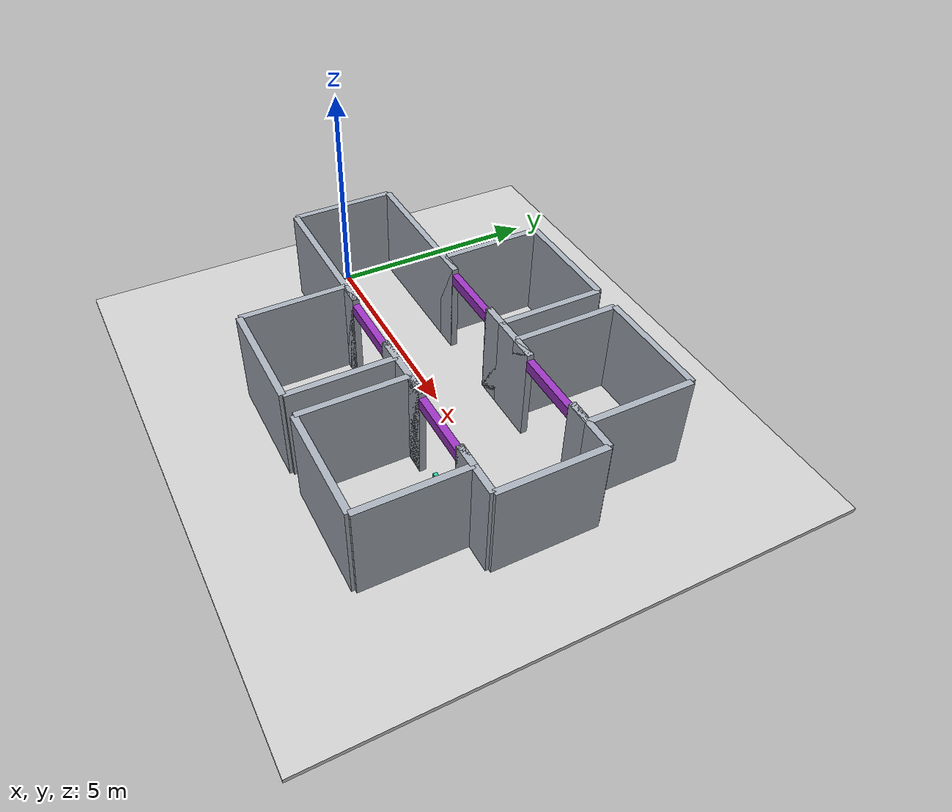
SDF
<sdf version="1.9">
  <world name="default">
    <plugin filename="gz-sim-physics-system" name="gz::sim::systems::Physics" />
    <plugin filename="gz-sim-user-commands-system" name="gz::sim::systems::UserCommands" />
    <plugin filename="gz-sim-sensors-system" name="gz::sim::systems::Sensors">
      <render_engine>ogre2</render_engine>
    </plugin>
    <plugin filename="gz-sim-imu-system" name="gz::sim::systems::Imu" />
    <plugin filename="gz-sim-contact-system" name="gz::sim::systems::Contact" />
    <physics name="3ms" type="ode">
      <max_step_size>0.003</max_step_size>
      <real_time_factor>1</real_time_factor>
    </physics>
    <light name="sun" type="directional">
      <pose>0 0 10 0 0 0</pose>
      <diffuse>0.9 0.9 0.9 1</diffuse>
      <direction>-0.5 0.1 -0.9</direction>
    </light>
    <model name="ground_plane">
      <static>true</static>
      <pose>4.75 0 -0.05 0 0 0</pose>
      <link name="body">
        <collision name="collision">
          <geometry>
            <box>
              <size>13.5 12 0.1</size>
            </box>
          </geometry>
        </collision>
        <visual name="visual">
          <geometry>
            <box>
              <size>13.5 12 0.1</size>
            </box>
          </geometry>
          <material>
            <ambient>0.8 0.8 0.8 1</ambient>
            <diffuse>0.8 0.8 0.8 1</diffuse>
          </material>
        </visual>
      </link>
    </model>
    <model name="start_wall">
      <static>true</static>
      <pose>0 0 1.1 0 0 0</pose>
      <link name="body">
        <collision name="collision">
          <geometry>
            <box>
              <size>0.15 2.4 2.2</size>
            </box>
          </geometry>
        </collision>
        <visual name="visual">
          <geometry>
            <box>
              <size>0.15 2.4 2.2</size>
            </box>
          </geometry>
          <material>
            <ambient>0.65 0.68 0.72 1</ambient>
            <diffuse>0.65 0.68 0.72 1</diffuse>
          </material>
        </visual>
      </link>
    </model>
    <model name="end_wall">
      <static>true</static>
      <pose>9.5 0 1.1 0 0 0</pose>
      <link name="body">
        <collision name="collision">
          <geometry>
            <box>
              <size>0.15 2.4 2.2</size>
            </box>
          </geometry>
        </collision>
        <visual name="visual">
          <geometry>
            <box>
              <size>0.15 2.4 2.2</size>
            </box>
          </geometry>
          <material>
            <ambient>0.65 0.68 0.72 1</ambient>
            <diffuse>0.65 0.68 0.72 1</diffuse>
          </material>
        </visual>
      </link>
    </model>
    <model name="hall_-1_1">
      <static>true</static>
      <pose>1.775 -1.2 1.1 0 0 0</pose>
      <link name="body">
        <collision name="collision">
          <geometry>
            <box>
              <size>3.55 0.15 2.2</size>
            </box>
          </geometry>
        </collision>
        <visual name="visual">
          <geometry>
            <box>
              <size>3.55 0.15 2.2</size>
            </box>
          </geometry>
          <material>
            <ambient>0.65 0.68 0.72 1</ambient>
            <diffuse>0.65 0.68 0.72 1</diffuse>
          </material>
        </visual>
      </link>
    </model>
    <model name="room_-1_1_-1">
      <static>true</static>
      <pose>3.0 -2.4 1.1 0 0 0</pose>
      <link name="body">
        <collision name="collision">
          <geometry>
            <box>
              <size>0.15 2.4 2.2</size>
            </box>
          </geometry>
        </collision>
        <visual name="visual">
          <geometry>
            <box>
              <size>0.15 2.4 2.2</size>
            </box>
          </geometry>
          <material>
            <ambient>0.65 0.68 0.72 1</ambient>
            <diffuse>0.65 0.68 0.72 1</diffuse>
          </material>
        </visual>
      </link>
    </model>
    <model name="room_-1_1_1">
      <static>true</static>
      <pose>5.6 -2.4 1.1 0 0 0</pose>
      <link name="body">
        <collision name="collision">
          <geometry>
            <box>
              <size>0.15 2.4 2.2</size>
            </box>
          </geometry>
        </collision>
        <visual name="visual">
          <geometry>
            <box>
              <size>0.15 2.4 2.2</size>
            </box>
          </geometry>
          <material>
            <ambient>0.65 0.68 0.72 1</ambient>
            <diffuse>0.65 0.68 0.72 1</diffuse>
          </material>
        </visual>
      </link>
    </model>
    <model name="room_end_-1_1">
      <static>true</static>
      <pose>4.3 -3.5999999999999996 1.1 0 0 0</pose>
      <link name="body">
        <collision name="collision">
          <geometry>
            <box>
              <size>2.6 0.15 2.2</size>
            </box>
          </geometry>
        </collision>
        <visual name="visual">
          <geometry>
            <box>
              <size>2.6 0.15 2.2</size>
            </box>
          </geometry>
          <material>
            <ambient>0.65 0.68 0.72 1</ambient>
            <diffuse>0.65 0.68 0.72 1</diffuse>
          </material>
        </visual>
      </link>
    </model>
    <model name="jamb_-1_1_-1">
      <static>true</static>
      <pose>3.275 -1.2 1.1 0 0 0</pose>
      <link name="body">
        <collision name="collision">
          <geometry>
            <box>
              <size>0.55 0.15 2.2</size>
            </box>
          </geometry>
        </collision>
        <visual name="visual">
          <geometry>
            <box>
              <size>0.55 0.15 2.2</size>
            </box>
          </geometry>
          <material>
            <ambient>0.65 0.68 0.72 1</ambient>
            <diffuse>0.65 0.68 0.72 1</diffuse>
          </material>
        </visual>
      </link>
    </model>
    <model name="jamb_-1_1_1">
      <static>true</static>
      <pose>5.324999999999999 -1.2 1.1 0 0 0</pose>
      <link name="body">
        <collision name="collision">
          <geometry>
            <box>
              <size>0.55 0.15 2.2</size>
            </box>
          </geometry>
        </collision>
        <visual name="visual">
          <geometry>
            <box>
              <size>0.55 0.15 2.2</size>
            </box>
          </geometry>
          <material>
            <ambient>0.65 0.68 0.72 1</ambient>
            <diffuse>0.65 0.68 0.72 1</diffuse>
          </material>
        </visual>
      </link>
    </model>
    <model name="hall_-1_2">
      <static>true</static>
      <pose>5.9 -1.2 1.1 0 0 0</pose>
      <link name="body">
        <collision name="collision">
          <geometry>
            <box>
              <size>1.7000000000000002 0.15 2.2</size>
            </box>
          </geometry>
        </collision>
        <visual name="visual">
          <geometry>
            <box>
              <size>1.7000000000000002 0.15 2.2</size>
            </box>
          </geometry>
          <material>
            <ambient>0.65 0.68 0.72 1</ambient>
            <diffuse>0.65 0.68 0.72 1</diffuse>
          </material>
        </visual>
      </link>
    </model>
    <model name="room_-1_2_-1">
      <static>true</static>
      <pose>6.2 -2.4 1.1 0 0 0</pose>
      <link name="body">
        <collision name="collision">
          <geometry>
            <box>
              <size>0.15 2.4 2.2</size>
            </box>
          </geometry>
        </collision>
        <visual name="visual">
          <geometry>
            <box>
              <size>0.15 2.4 2.2</size>
            </box>
          </geometry>
          <material>
            <ambient>0.65 0.68 0.72 1</ambient>
            <diffuse>0.65 0.68 0.72 1</diffuse>
          </material>
        </visual>
      </link>
    </model>
    <model name="room_-1_2_1">
      <static>true</static>
      <pose>8.8 -2.4 1.1 0 0 0</pose>
      <link name="body">
        <collision name="collision">
          <geometry>
            <box>
              <size>0.15 2.4 2.2</size>
            </box>
          </geometry>
        </collision>
        <visual name="visual">
          <geometry>
            <box>
              <size>0.15 2.4 2.2</size>
            </box>
          </geometry>
          <material>
            <ambient>0.65 0.68 0.72 1</ambient>
            <diffuse>0.65 0.68 0.72 1</diffuse>
          </material>
        </visual>
      </link>
    </model>
    <model name="room_end_-1_2">
      <static>true</static>
      <pose>7.5 -3.5999999999999996 1.1 0 0 0</pose>
      <link name="body">
        <collision name="collision">
          <geometry>
            <box>
              <size>2.6 0.15 2.2</size>
            </box>
          </geometry>
        </collision>
        <visual name="visual">
          <geometry>
            <box>
              <size>2.6 0.15 2.2</size>
            </box>
          </geometry>
          <material>
            <ambient>0.65 0.68 0.72 1</ambient>
            <diffuse>0.65 0.68 0.72 1</diffuse>
          </material>
        </visual>
      </link>
    </model>
    <model name="jamb_-1_2_-1">
      <static>true</static>
      <pose>6.475 -1.2 1.1 0 0 0</pose>
      <link name="body">
        <collision name="collision">
          <geometry>
            <box>
              <size>0.55 0.15 2.2</size>
            </box>
          </geometry>
        </collision>
        <visual name="visual">
          <geometry>
            <box>
              <size>0.55 0.15 2.2</size>
            </box>
          </geometry>
          <material>
            <ambient>0.65 0.68 0.72 1</ambient>
            <diffuse>0.65 0.68 0.72 1</diffuse>
          </material>
        </visual>
      </link>
    </model>
    <model name="jamb_-1_2_1">
      <static>true</static>
      <pose>8.525 -1.2 1.1 0 0 0</pose>
      <link name="body">
        <collision name="collision">
          <geometry>
            <box>
              <size>0.55 0.15 2.2</size>
            </box>
          </geometry>
        </collision>
        <visual name="visual">
          <geometry>
            <box>
              <size>0.55 0.15 2.2</size>
            </box>
          </geometry>
          <material>
            <ambient>0.65 0.68 0.72 1</ambient>
            <diffuse>0.65 0.68 0.72 1</diffuse>
          </material>
        </visual>
      </link>
    </model>
    <model name="hall_end_-1">
      <static>true</static>
      <pose>8.875 -1.2 1.1 0 0 0</pose>
      <link name="body">
        <collision name="collision">
          <geometry>
            <box>
              <size>1.25 0.15 2.2</size>
            </box>
          </geometry>
        </collision>
        <visual name="visual">
          <geometry>
            <box>
              <size>1.25 0.15 2.2</size>
            </box>
          </geometry>
          <material>
            <ambient>0.65 0.68 0.72 1</ambient>
            <diffuse>0.65 0.68 0.72 1</diffuse>
          </material>
        </visual>
      </link>
    </model>
    <model name="hall_1_1">
      <static>true</static>
      <pose>1.775 1.2 1.1 0 0 0</pose>
      <link name="body">
        <collision name="collision">
          <geometry>
            <box>
              <size>3.55 0.15 2.2</size>
            </box>
          </geometry>
        </collision>
        <visual name="visual">
          <geometry>
            <box>
              <size>3.55 0.15 2.2</size>
            </box>
          </geometry>
          <material>
            <ambient>0.65 0.68 0.72 1</ambient>
            <diffuse>0.65 0.68 0.72 1</diffuse>
          </material>
        </visual>
      </link>
    </model>
    <model name="room_1_1_-1">
      <static>true</static>
      <pose>3.0 2.4 1.1 0 0 0</pose>
      <link name="body">
        <collision name="collision">
          <geometry>
            <box>
              <size>0.15 2.4 2.2</size>
            </box>
          </geometry>
        </collision>
        <visual name="visual">
          <geometry>
            <box>
              <size>0.15 2.4 2.2</size>
            </box>
          </geometry>
          <material>
            <ambient>0.65 0.68 0.72 1</ambient>
            <diffuse>0.65 0.68 0.72 1</diffuse>
          </material>
        </visual>
      </link>
    </model>
    <model name="room_1_1_1">
      <static>true</static>
      <pose>5.6 2.4 1.1 0 0 0</pose>
      <link name="body">
        <collision name="collision">
          <geometry>
            <box>
              <size>0.15 2.4 2.2</size>
            </box>
          </geometry>
        </collision>
        <visual name="visual">
          <geometry>
            <box>
              <size>0.15 2.4 2.2</size>
            </box>
          </geometry>
          <material>
            <ambient>0.65 0.68 0.72 1</ambient>
            <diffuse>0.65 0.68 0.72 1</diffuse>
          </material>
        </visual>
      </link>
    </model>
    <model name="room_end_1_1">
      <static>true</static>
      <pose>4.3 3.5999999999999996 1.1 0 0 0</pose>
      <link name="body">
        <collision name="collision">
          <geometry>
            <box>
              <size>2.6 0.15 2.2</size>
            </box>
          </geometry>
        </collision>
        <visual name="visual">
          <geometry>
            <box>
              <size>2.6 0.15 2.2</size>
            </box>
          </geometry>
          <material>
            <ambient>0.65 0.68 0.72 1</ambient>
            <diffuse>0.65 0.68 0.72 1</diffuse>
          </material>
        </visual>
      </link>
    </model>
    <model name="jamb_1_1_-1">
      <static>true</static>
      <pose>3.275 1.2 1.1 0 0 0</pose>
      <link name="body">
        <collision name="collision">
          <geometry>
            <box>
              <size>0.55 0.15 2.2</size>
            </box>
          </geometry>
        </collision>
        <visual name="visual">
          <geometry>
            <box>
              <size>0.55 0.15 2.2</size>
            </box>
          </geometry>
          <material>
            <ambient>0.65 0.68 0.72 1</ambient>
            <diffuse>0.65 0.68 0.72 1</diffuse>
          </material>
        </visual>
      </link>
    </model>
    <model name="jamb_1_1_1">
      <static>true</static>
      <pose>5.324999999999999 1.2 1.1 0 0 0</pose>
      <link name="body">
        <collision name="collision">
          <geometry>
            <box>
              <size>0.55 0.15 2.2</size>
            </box>
          </geometry>
        </collision>
        <visual name="visual">
          <geometry>
            <box>
              <size>0.55 0.15 2.2</size>
            </box>
          </geometry>
          <material>
            <ambient>0.65 0.68 0.72 1</ambient>
            <diffuse>0.65 0.68 0.72 1</diffuse>
          </material>
        </visual>
      </link>
    </model>
    <model name="hall_1_2">
      <static>true</static>
      <pose>5.9 1.2 1.1 0 0 0</pose>
      <link name="body">
        <collision name="collision">
          <geometry>
            <box>
              <size>1.7000000000000002 0.15 2.2</size>
            </box>
          </geometry>
        </collision>
        <visual name="visual">
          <geometry>
            <box>
              <size>1.7000000000000002 0.15 2.2</size>
            </box>
          </geometry>
          <material>
            <ambient>0.65 0.68 0.72 1</ambient>
            <diffuse>0.65 0.68 0.72 1</diffuse>
          </material>
        </visual>
      </link>
    </model>
    <model name="room_1_2_-1">
      <static>true</static>
      <pose>6.2 2.4 1.1 0 0 0</pose>
      <link name="body">
        <collision name="collision">
          <geometry>
            <box>
              <size>0.15 2.4 2.2</size>
            </box>
          </geometry>
        </collision>
        <visual name="visual">
          <geometry>
            <box>
              <size>0.15 2.4 2.2</size>
            </box>
          </geometry>
          <material>
            <ambient>0.65 0.68 0.72 1</ambient>
            <diffuse>0.65 0.68 0.72 1</diffuse>
          </material>
        </visual>
      </link>
    </model>
    <model name="room_1_2_1">
      <static>true</static>
      <pose>8.8 2.4 1.1 0 0 0</pose>
      <link name="body">
        <collision name="collision">
          <geometry>
            <box>
              <size>0.15 2.4 2.2</size>
            </box>
          </geometry>
        </collision>
        <visual name="visual">
          <geometry>
            <box>
              <size>0.15 2.4 2.2</size>
            </box>
          </geometry>
          <material>
            <ambient>0.65 0.68 0.72 1</ambient>
            <diffuse>0.65 0.68 0.72 1</diffuse>
          </material>
        </visual>
      </link>
    </model>
    <model name="room_end_1_2">
      <static>true</static>
      <pose>7.5 3.5999999999999996 1.1 0 0 0</pose>
      <link name="body">
        <collision name="collision">
          <geometry>
            <box>
              <size>2.6 0.15 2.2</size>
            </box>
          </geometry>
        </collision>
        <visual name="visual">
          <geometry>
            <box>
              <size>2.6 0.15 2.2</size>
            </box>
          </geometry>
          <material>
            <ambient>0.65 0.68 0.72 1</ambient>
            <diffuse>0.65 0.68 0.72 1</diffuse>
          </material>
        </visual>
      </link>
    </model>
    <model name="jamb_1_2_-1">
      <static>true</static>
      <pose>6.475 1.2 1.1 0 0 0</pose>
      <link name="body">
        <collision name="collision">
          <geometry>
            <box>
              <size>0.55 0.15 2.2</size>
            </box>
          </geometry>
        </collision>
        <visual name="visual">
          <geometry>
            <box>
              <size>0.55 0.15 2.2</size>
            </box>
          </geometry>
          <material>
            <ambient>0.65 0.68 0.72 1</ambient>
            <diffuse>0.65 0.68 0.72 1</diffuse>
          </material>
        </visual>
      </link>
    </model>
    <model name="jamb_1_2_1">
      <static>true</static>
      <pose>8.525 1.2 1.1 0 0 0</pose>
      <link name="body">
        <collision name="collision">
          <geometry>
            <box>
              <size>0.55 0.15 2.2</size>
            </box>
          </geometry>
        </collision>
        <visual name="visual">
          <geometry>
            <box>
              <size>0.55 0.15 2.2</size>
            </box>
          </geometry>
          <material>
            <ambient>0.65 0.68 0.72 1</ambient>
            <diffuse>0.65 0.68 0.72 1</diffuse>
          </material>
        </visual>
      </link>
    </model>
    <model name="hall_end_1">
      <static>true</static>
      <pose>8.875 1.2 1.1 0 0 0</pose>
      <link name="body">
        <collision name="collision">
          <geometry>
            <box>
              <size>1.25 0.15 2.2</size>
            </box>
          </geometry>
        </collision>
        <visual name="visual">
          <geometry>
            <box>
              <size>1.25 0.15 2.2</size>
            </box>
          </geometry>
          <material>
            <ambient>0.65 0.68 0.72 1</ambient>
            <diffuse>0.65 0.68 0.72 1</diffuse>
          </material>
        </visual>
      </link>
    </model>
    <model name="r3geo_base_r010_right_1_lintel">
      <static>true</static>
      <pose>4.3 -1.2 1.95 0 0 0</pose>
      <link name="body">
        <collision name="collision">
          <geometry>
            <box>
              <size>1.5 0.16 0.25</size>
            </box>
          </geometry>
        </collision>
        <visual name="visual">
          <geometry>
            <box>
              <size>1.5 0.16 0.25</size>
            </box>
          </geometry>
          <material>
            <ambient>0.6 0.2 0.75 1</ambient>
            <diffuse>0.6 0.2 0.75 1</diffuse>
          </material>
        </visual>
      </link>
    </model>
    <model name="r3geo_base_r010_right_1_entrance_sign">
      <static>true</static>
      <pose>4.83 -1.5 1.05 0 0 0</pose>
      <link name="body">
        <visual name="visual">
          <geometry>
            <box>
              <size>0.32 0.08 0.32</size>
            </box>
          </geometry>
          <material>
            <ambient>0.16 0.8 0.61 1</ambient>
            <diffuse>0.16 0.8 0.61 1</diffuse>
          </material>
        </visual>
      </link>
    </model>
    <model name="r3geo_base_r010_right_2_lintel">
      <static>true</static>
      <pose>7.5 -1.2 1.95 0 0 0</pose>
      <link name="body">
        <collision name="collision">
          <geometry>
            <box>
              <size>1.5 0.16 0.25</size>
            </box>
          </geometry>
        </collision>
        <visual name="visual">
          <geometry>
            <box>
              <size>1.5 0.16 0.25</size>
            </box>
          </geometry>
          <material>
            <ambient>0.6 0.2 0.75 1</ambient>
            <diffuse>0.6 0.2 0.75 1</diffuse>
          </material>
        </visual>
      </link>
    </model>
    <model name="r3geo_base_r010_right_2_entrance_sign">
      <static>true</static>
      <pose>8.03 -1.5 1.05 0 0 0</pose>
      <link name="body">
        <visual name="visual">
          <geometry>
            <box>
              <size>0.32 0.08 0.32</size>
            </box>
          </geometry>
          <material>
            <ambient>0.16 0.8 0.61 1</ambient>
            <diffuse>0.16 0.8 0.61 1</diffuse>
          </material>
        </visual>
      </link>
    </model>
    <model name="r3geo_base_r010_left_1_lintel">
      <static>true</static>
      <pose>4.3 1.2 1.95 0 0 0</pose>
      <link name="body">
        <collision name="collision">
          <geometry>
            <box>
              <size>1.5 0.16 0.25</size>
            </box>
          </geometry>
        </collision>
        <visual name="visual">
          <geometry>
            <box>
              <size>1.5 0.16 0.25</size>
            </box>
          </geometry>
          <material>
            <ambient>0.6 0.2 0.75 1</ambient>
            <diffuse>0.6 0.2 0.75 1</diffuse>
          </material>
        </visual>
      </link>
    </model>
    <model name="r3geo_base_r010_left_1_entrance_sign">
      <static>true</static>
      <pose>4.83 1.5 1.05 0 0 0</pose>
      <link name="body">
        <visual name="visual">
          <geometry>
            <box>
              <size>0.32 0.08 0.32</size>
            </box>
          </geometry>
          <material>
            <ambient>0.84 0.18 0.57 1</ambient>
            <diffuse>0.84 0.18 0.57 1</diffuse>
          </material>
        </visual>
      </link>
    </model>
    <model name="r3geo_base_r010_left_2_lintel">
      <static>true</static>
      <pose>7.5 1.2 1.95 0 0 0</pose>
      <link name="body">
        <collision name="collision">
          <geometry>
            <box>
              <size>1.5 0.16 0.25</size>
            </box>
          </geometry>
        </collision>
        <visual name="visual">
          <geometry>
            <box>
              <size>1.5 0.16 0.25</size>
            </box>
          </geometry>
          <material>
            <ambient>0.6 0.2 0.75 1</ambient>
            <diffuse>0.6 0.2 0.75 1</diffuse>
          </material>
        </visual>
      </link>
    </model>
    <model name="r3geo_base_r010_left_2_entrance_sign">
      <static>true</static>
      <pose>8.03 1.5 1.05 0 0 0</pose>
      <link name="body">
        <visual name="visual">
          <geometry>
            <box>
              <size>0.32 0.08 0.32</size>
            </box>
          </geometry>
          <material>
            <ambient>0.84 0.18 0.57 1</ambient>
            <diffuse>0.84 0.18 0.57 1</diffuse>
          </material>
        </visual>
      </link>
    </model>
  </world>
</sdf>
